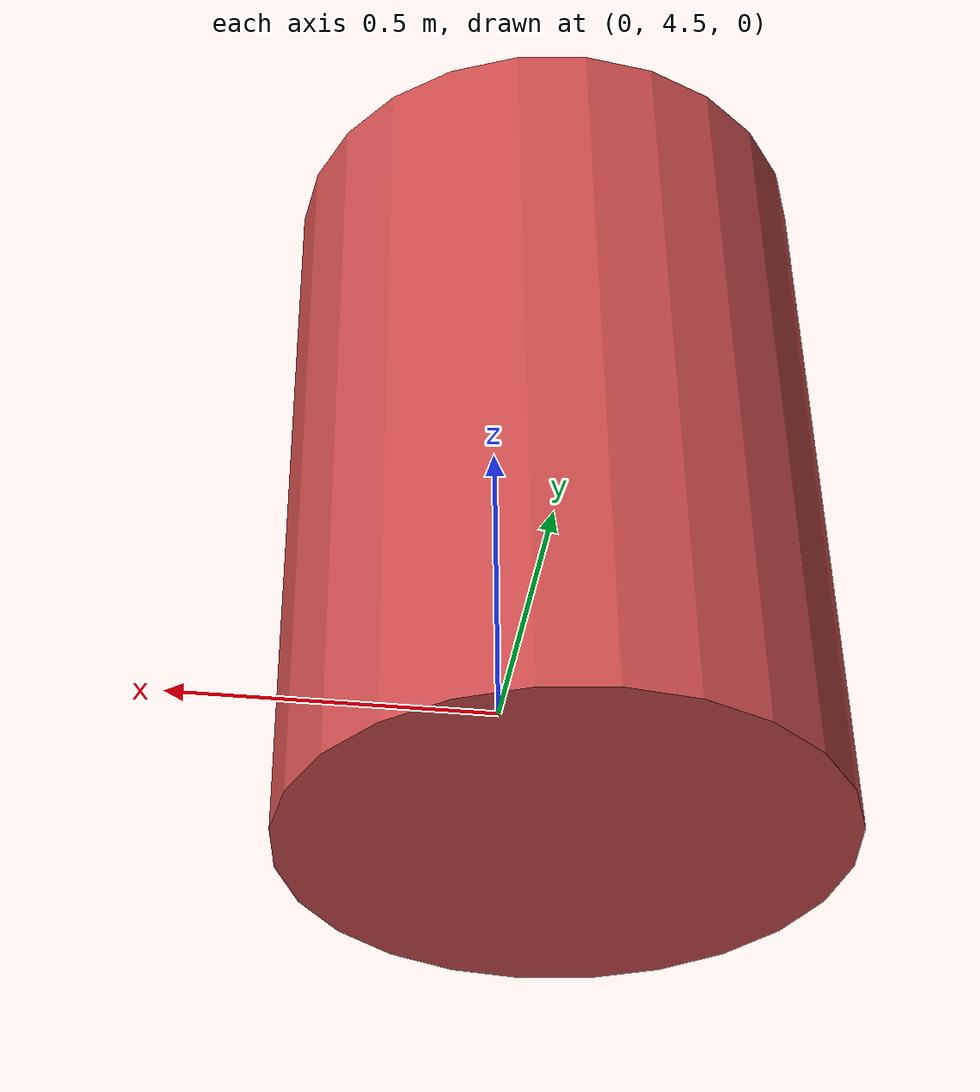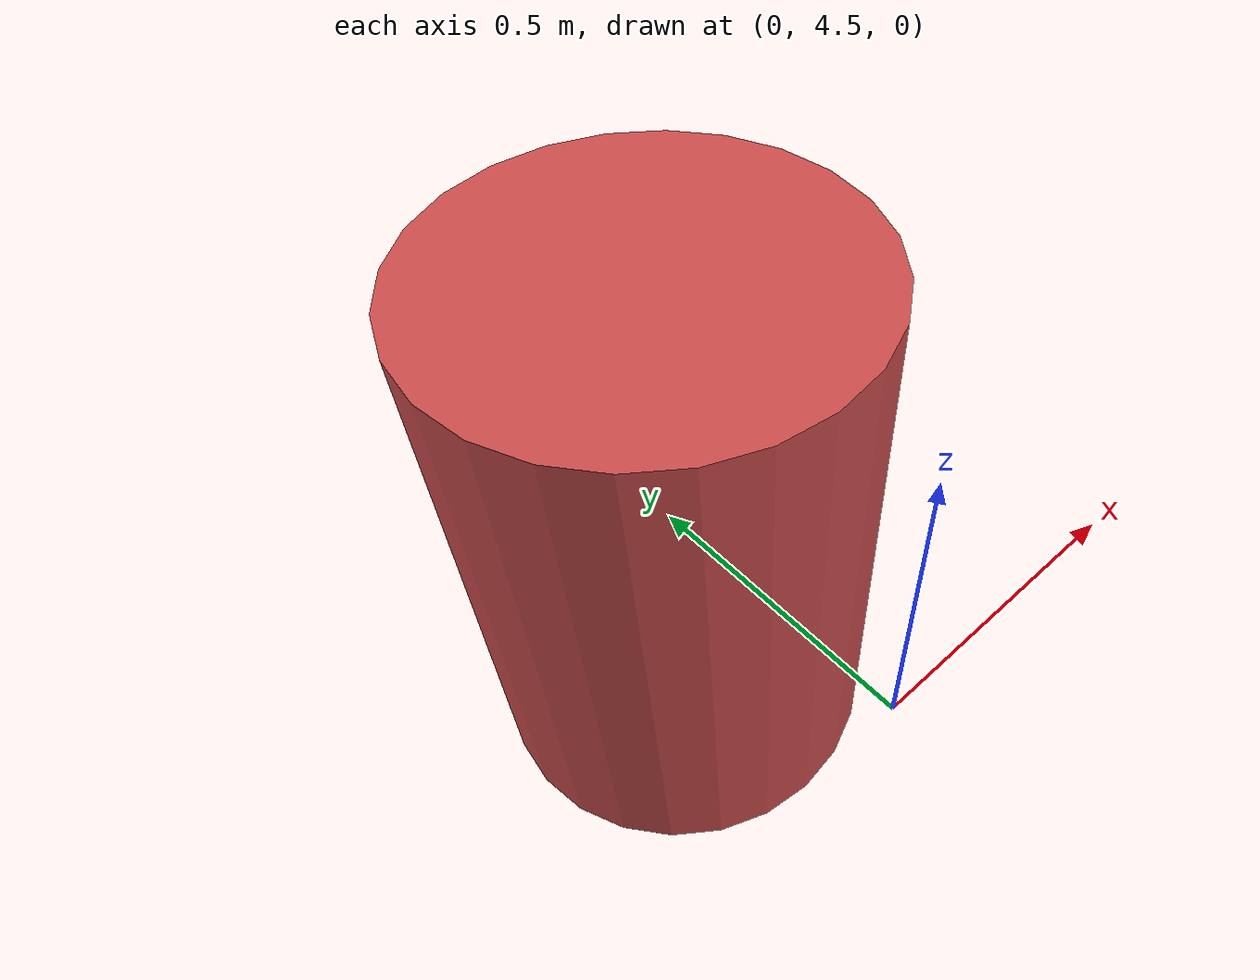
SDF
<?xml version="1.0" ?>
<sdf version="1.6">
  <model name="VerticalMotion">
    <static>false</static>

    <link name="link">
      <pose>0 5 0 0 0 0</pose>
      <visual name="visual">
        <geometry>
          <cylinder>
            <radius>0.35</radius>
            <length>1.0</length>
          </cylinder>
        </geometry>
        <material>
          <ambient>0.8 0.3 0.3 1</ambient>
          <diffuse>0.8 0.3 0.3 1</diffuse>
          <specular>0.5 0.5 0.5 1</specular>
        </material>
      </visual>
      <collision name="collision">
        <geometry>
          <cylinder>
            <radius>0.35</radius>
            <length>1.0</length>
          </cylinder>
        </geometry>
      </collision>
      <inertial>
        <mass>1.0</mass>
        <inertia>
          <ixx>0.1</ixx>
          <iyy>0.1</iyy>
          <izz>0.1</izz>
        </inertia>
      </inertial>
    </link>

    <!-- Attach the plugin -->
    <plugin name="VerticalMotionSystem" filename="libvertical_motion_system.so">
      <mode>bounce</mode>
      <axis>x</axis>
      <min>-2.0</min>
      <max> 2.0</max>
      <speed>0.6</speed>
    </plugin>
  </model>
</sdf>
